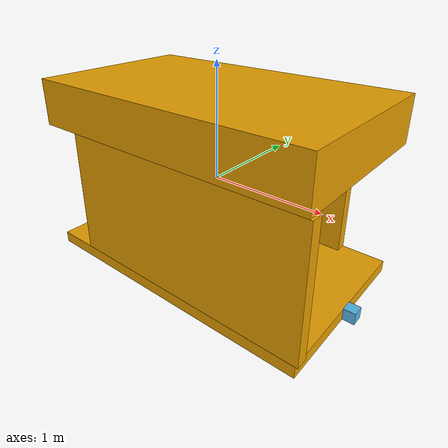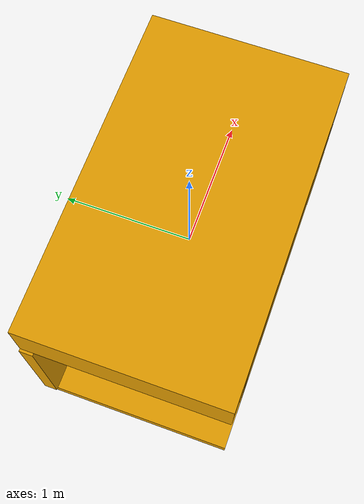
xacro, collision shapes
<?xml version="1.0" ?>
<robot name="auv" xmlns:xacro="http://www.ros.org/wiki/xacro">

  <xacro:include filename="$(find sauvc_sim)/urdf/sensors.xacro"/>
  <xacro:include filename="$(find sauvc_sim)/urdf/plugins.xacro"/>

  <link name="base_link">
    <!-- Inertial properties -->
    <inertial>
      <origin xyz="0 0 -0.59" rpy="0 0 0"/>
      <mass value="1862.87"/>
      <inertia
        ixx="525.39" ixy="1.44" ixz="33.41"
        iyy="794.20" iyz="2.6"  izz="691.23"/>
    </inertial>

    <!-- Visual mesh -->
    <visual>
      <origin xyz="0 0 0" rpy="0 0 0"/>
      <geometry>
        <mesh filename="file://$(find sauvc_sim)/meshes/rexrov/RexROV_no_props.dae" scale="1 1 1"/>
      </geometry>
    </visual>

    <!-- Collision: bottom plate -->
    <collision>
      <origin xyz="0 0 -0.75" rpy="0 0 0"/>
      <geometry>
        <box size="2.56 1.50 0.10"/>
      </geometry>
    </collision>

    <!-- Collision: top plate -->
    <collision>
      <origin xyz="0 0 0.60" rpy="0 0 0"/>
      <geometry>
        <box size="2.56 1.50 0.40"/>
      </geometry>
    </collision>

    <!-- Collision: left side -->
    <collision>
      <origin xyz="-0.20 0.70 -0.15" rpy="0 0 0"/>
      <geometry>
        <box size="2.20 0.10 1.10"/>
      </geometry>
    </collision>

    <!-- Collision: right side -->
    <collision>
      <origin xyz="0.20 -0.70 -0.15" rpy="0 0 0"/>
      <geometry>
        <box size="2.20 0.10 1.10"/>
      </geometry>
    </collision>
  </link>

<!-- Camera Link -->
  <link name="camera_link">
    <!-- Inertial -->
    <inertial>
      <mass value="0.1"/>
      <inertia
        ixx="0.000166667" ixy="0.0" ixz="0.0"
        iyy="0.000166667" iyz="0.0" izz="0.000166667"/>
    </inertial>

    <!-- Collision -->
    <collision>
      <geometry>
        <box size="0.1 0.1 0.1"/>
      </geometry>
    </collision>

    <!-- Visual -->
    <visual>
      <geometry>
        <box size="0.1 0.1 0.1"/>
      </geometry>
    </visual>
  </link>

  <!-- Fixed joint between base_link and camera_link -->
  <joint name="camera_joint" type="fixed">
    <origin xyz="1.33 0 -0.74" rpy="0 0 0"/>
    <parent link="base_link"/>
    <child link="camera_link"/>
  </joint>

  <!-- Magnetometer Link -->
  <link name="magnetometer_link">

    <inertial>
      <mass value="0.015"/>
      <inertia
        ixx="0.00001" ixy="0.0" ixz="0.0"
        iyy="0.00001" iyz="0.0" izz="0.00001"/>
    </inertial>
  </link>

    <joint name="magnetometer_joint" type="fixed">
      <origin xyz='0 0 0' rpy='0 0 0'/>
      <parent link="base_link" />
      <child link="magnetometer_link" />
    </joint>

    <link name="imu_link">
      <inertial>
        <origin xyz="0 0 0" rpy="0 0 0"/>
        <mass value="0.015"/>
        <inertia ixx="0.00001" ixy="0.0" ixz="0.0" iyy="0.00001" iyz="0.0" izz="0.00001"/>
      </inertial>
    </link>

    <joint name="imu_joint" type="fixed">
      <origin xyz='0 0 0' rpy='0 0 0'/>
      <parent link="base_link" />
      <child link="imu_link" />
    </joint>

  <!-- Thruster 1 -->
  <link name="thruster1">
    <inertial>
      <mass value="0.001"/>
      <inertia ixx="0.0005" ixy="0" ixz="0"
              iyy="0.0005" iyz="0" izz="0.0005"/>
    </inertial>
    <visual>
      <geometry>
        <mesh filename="file://$(find sauvc_sim)/meshes/rexrov/prop.dae" scale="1 1 1"/>
      </geometry>
    </visual>
    <collision>
      <origin xyz="0 0 0" rpy="0 0 0"/>
      <geometry>
        <cylinder length="0.000001" radius="0.000001"/>
      </geometry>
    </collision>
  </link>

  <joint name="thruster1_joint" type="revolute">
    <origin xyz="-0.890895 0.334385 0.528822" rpy="0 -1.300794 -0.928689"/>
    <parent link="base_link"/>
    <child link="thruster1"/>
    <axis xyz="1 0 0"/>
    <limit effort="100" lower="-1000" upper="1000" velocity="100"/>
  </joint>

  <!-- Thruster 2 -->
  <link name="thruster2">
    <inertial>
      <mass value="0.001"/>
      <inertia ixx="0.0005" ixy="0" ixz="0"
              iyy="0.0005" iyz="0" izz="0.0005"/>
    </inertial>
    <visual>
      <geometry>
        <mesh filename="file://$(find sauvc_sim)/meshes/rexrov/prop.dae" scale="1 1 1"/>
      </geometry>
    </visual>
    <collision>
      <origin xyz="0 0 0" rpy="0 0 0"/>
      <geometry>
        <cylinder length="0.000001" radius="0.000001"/>
      </geometry>
    </collision>
  </link>

  <joint name="thruster2_joint" type="revolute">
    <origin xyz="-0.890895 -0.334385 0.528822" rpy="0 -1.300794 0.928689"/>
    <parent link="base_link"/>
    <child link="thruster2"/>
    <axis xyz="1 0 0"/>
    <limit effort="100" lower="-1000" upper="1000" velocity="100"/>
  </joint>

  <!-- Thruster 3 -->
  <link name="thruster3">
    <inertial>
      <mass value="0.001"/>
      <inertia ixx="0.0005" ixy="0" ixz="0"
              iyy="0.0005" iyz="0" izz="0.0005"/>
    </inertial>
    <visual>
      <geometry>
        <mesh filename="file://$(find sauvc_sim)/meshes/rexrov/prop.dae" scale="1 1 1"/>
      </geometry>
    </visual>
    <collision>
      <origin xyz="0 0 0" rpy="0 0 0"/>
      <geometry>
        <cylinder length="0.000001" radius="0.000001"/>
      </geometry>
    </collision>
  </link>

  <joint name="thruster3_joint" type="revolute">
    <origin xyz="0.890895 0.334385 0.528822" rpy="0 -1.840798 0.928689"/>
    <parent link="base_link"/>
    <child link="thruster3"/>
    <axis xyz="1 0 0"/>
    <limit effort="100" lower="-1000" upper="1000" velocity="100"/>
  </joint>

  <!-- Thruster 4 -->
  <link name="thruster4">
    <inertial>
      <mass value="0.001"/>
      <inertia ixx="0.0005" ixy="0" ixz="0"
              iyy="0.0005" iyz="0" izz="0.0005"/>
    </inertial>
    <visual>
      <geometry>
        <mesh filename="file://$(find sauvc_sim)/meshes/rexrov/prop.dae" scale="1 1 1"/>
      </geometry>
    </visual>
    <collision>
      <origin xyz="0 0 0" rpy="0 0 0"/>
      <geometry>
        <cylinder length="0.000001" radius="0.000001"/>
      </geometry>
    </collision>
  </link>

  <joint name="thruster4_joint" type="revolute">
    <origin xyz="0.890895 -0.334385 0.528822" rpy="0 -1.300794 -0.928689"/>
    <parent link="base_link"/>
    <child link="thruster4"/>
    <axis xyz="1 0 0"/>
    <limit effort="100" lower="-1000" upper="1000" velocity="100"/>
  </joint>

  <!-- Thruster 5 -->
  <link name="thruster5">
    <inertial>
      <mass value="0.001"/>
      <inertia ixx="0.0005" ixy="0" ixz="0"
              iyy="0.0005" iyz="0" izz="0.0005"/>
    </inertial>
    <visual>
      <geometry>
        <mesh filename="file://$(find sauvc_sim)/meshes/rexrov/prop.dae" scale="1 1 1"/>
      </geometry>
    </visual>
    <collision>
      <origin xyz="0 0 0" rpy="0 0 0"/>
      <geometry>
        <cylinder length="0.000001" radius="0.000001"/>
      </geometry>
    </collision>
  </link>

  <joint name="thruster5_joint" type="revolute">
    <origin xyz="-0.412125 0.505415 0.129" rpy="0 0 0.785398"/>
    <parent link="base_link"/>
    <child link="thruster5"/>
    <axis xyz="1 0 0"/>
    <limit effort="100" lower="-1000" upper="1000" velocity="100"/>
  </joint>

  <!-- Thruster 6 -->
  <link name="thruster6">
    <inertial>
      <mass value="0.001"/>
      <inertia ixx="0.0005" ixy="0" ixz="0"
              iyy="0.0005" iyz="0" izz="0.0005"/>
    </inertial>
    <visual>
      <geometry>
        <mesh filename="file://$(find sauvc_sim)/meshes/rexrov/prop.dae" scale="1 1 1"/>
      </geometry>
    </visual>
    <collision>
      <origin xyz="0 0 0" rpy="0 0 0"/>
      <geometry>
        <cylinder length="0.000001" radius="0.000001"/>
      </geometry>
    </collision>
  </link>

  <joint name="thruster6_joint" type="revolute">
    <origin xyz="-0.412125 -0.505415 0.129" rpy="0 0 -0.785398"/>
    <parent link="base_link"/>
    <child link="thruster6"/>
    <axis xyz="1 0 0"/>
    <limit effort="100" lower="-1000" upper="1000" velocity="100"/>
  </joint>

  <!-- Thruster 7 -->
  <link name="thruster7">
    <inertial>
      <mass value="0.001"/>
      <inertia ixx="0.0005" ixy="0" ixz="0"
              iyy="0.0005" iyz="0" izz="0.0005"/>
    </inertial>
    <visual>
      <geometry>
        <mesh filename="file://$(find sauvc_sim)/meshes/rexrov/prop.dae" scale="1 1 1"/>
      </geometry>
    </visual>
    <collision>
      <origin xyz="0 0 0" rpy="0 0 0"/>
      <geometry>
        <cylinder length="0.000001" radius="0.000001"/>
      </geometry>
    </collision>
  </link>

  <joint name="thruster7_joint" type="revolute">
    <origin xyz="0.412125 0.505415 0.129" rpy="0 0 2.356194"/>
    <parent link="base_link"/>
    <child link="thruster7"/>
    <axis xyz="1 0 0"/>
    <limit effort="100" lower="-1000" upper="1000" velocity="100"/>
  </joint>

  <!-- Thruster 8 -->
  <link name="thruster8">
    <inertial>
      <mass value="0.001"/>
      <inertia ixx="0.0005" ixy="0" ixz="0"
              iyy="0.0005" iyz="0" izz="0.0005"/>
    </inertial>
    <visual>
      <geometry>
        <mesh filename="file://$(find sauvc_sim)/meshes/rexrov/prop.dae" scale="1 1 1"/>
      </geometry>
    </visual>
    <collision>
      <origin xyz="0 0 0" rpy="0 0 0"/>
      <geometry>
        <cylinder length="0.000001" radius="0.000001"/>
      </geometry>
    </collision>
  </link>

  <joint name="thruster8_joint" type="revolute">
    <origin xyz="0.412125 -0.505415 0.129" rpy="0 0 -2.356194"/>
    <parent link="base_link"/>
    <child link="thruster8"/>
    <axis xyz="1 0 0"/>
    <limit effort="100" lower="-1000" upper="1000" velocity="100"/>
  </joint>

</robot>
